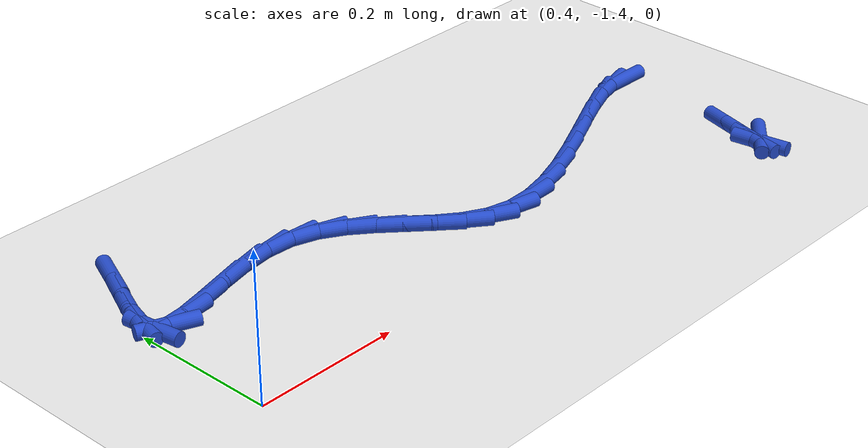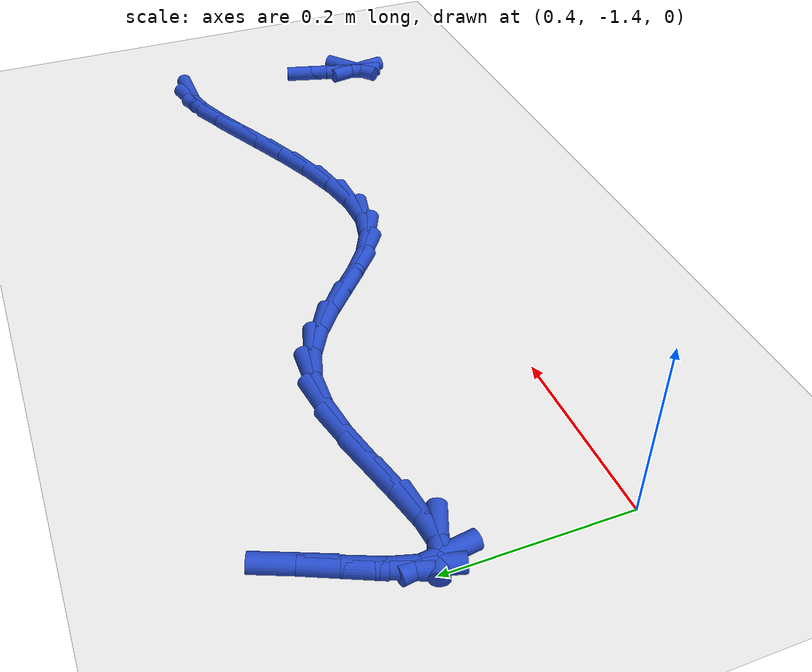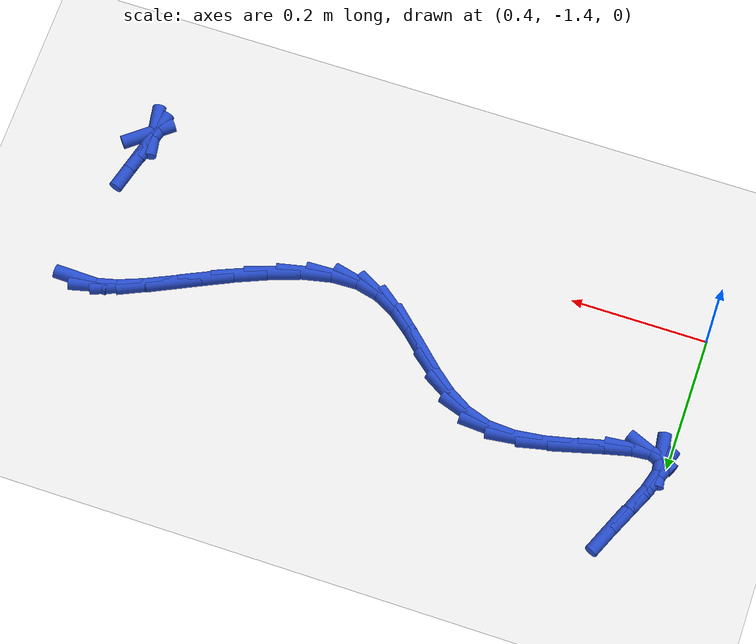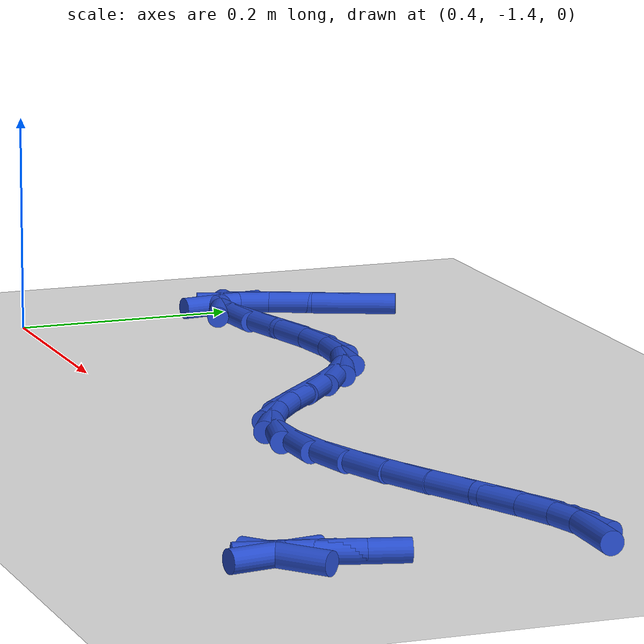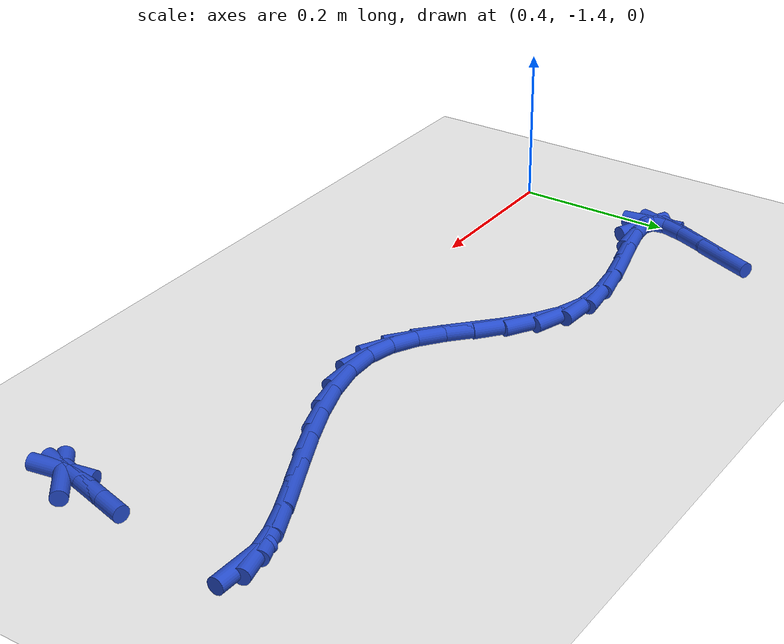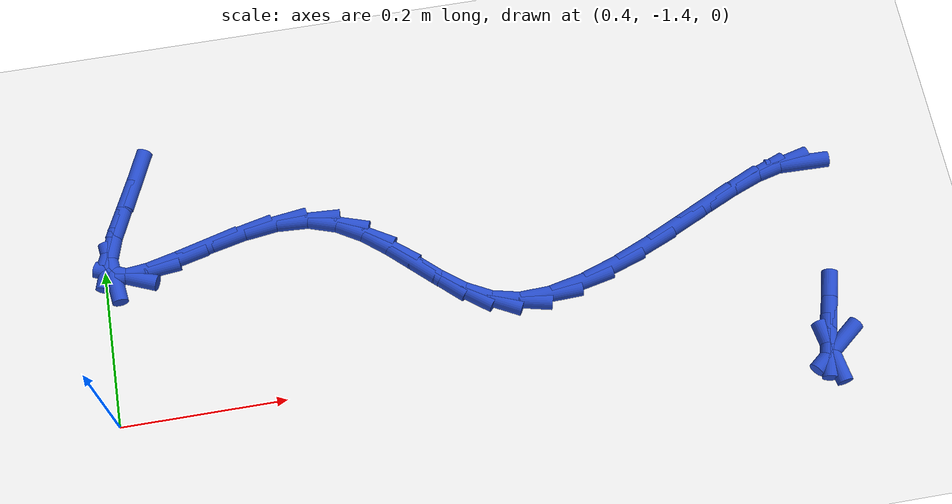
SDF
<sdf version="1.6">
 <world name="default">
  <model name="ground_plane">
   <static>1</static>
   <link name="link">
    <collision name="collision">
     <geometry><plane><normal>0 0 1</normal><size>100 100</size></plane></geometry>
     <surface><friction><ode><mu>100</mu><mu2>50</mu2></ode></friction></surface>
    </collision>
    <visual name="visual">
     <cast_shadows>0</cast_shadows>
     <geometry><plane><normal>0 0 1</normal><size>100 100</size></plane></geometry>
     <material>
      <script><uri>file://media/materials/scripts/gazebo.material</uri><name>Gazebo/WhiteGlow</name></script>
     </material>
    </visual>
   </link>
  </model>
  <model name="line">
   <link name="link_207">
    <pose>1.2606086851910296 -1.4503442014135461 0.01 0 1.57 0.6828415414742335</pose>
    <collision name="collision">
     <geometry><cylinder><radius>0.01</radius><length>0.08</length></cylinder></geometry>
    </collision>
    <visual name="visual">
     <material>
      <script><name>Gazebo/Blue</name><uri>file://media/materials/scripts/gazebo.material</uri></script>
     </material>
     <geometry><cylinder><radius>0.01</radius><length>0.08</length></cylinder></geometry>
    </visual>
   </link>
   <link name="link_208">
    <pose>1.2534373727070638 -1.4561771457020871 0.01 0 1.57 -1.408282236943456</pose>
    <collision name="collision">
     <geometry><cylinder><radius>0.01</radius><length>0.08</length></cylinder></geometry>
    </collision>
    <visual name="visual">
     <material>
      <script><name>Gazebo/Blue</name><uri>file://media/materials/scripts/gazebo.material</uri></script>
     </material>
     <geometry><cylinder><radius>0.01</radius><length>0.08</length></cylinder></geometry>
    </visual>
   </link>
   <link name="link_209">
    <pose>1.2521960085868948 -1.4486060092830366 0.01 0 1.57 1.3526039730971553</pose>
    <collision name="collision">
     <geometry><cylinder><radius>0.01</radius><length>0.08</length></cylinder></geometry>
    </collision>
    <visual name="visual">
     <material>
      <script><name>Gazebo/Blue</name><uri>file://media/materials/scripts/gazebo.material</uri></script>
     </material>
     <geometry><cylinder><radius>0.01</radius><length>0.08</length></cylinder></geometry>
    </visual>
   </link>
   <link name="link_210">
    <pose>1.257076906641807 -1.4265924300860857 0.01 0 1.57 1.3030548635360757</pose>
    <collision name="collision">
     <geometry><cylinder><radius>0.01</radius><length>0.08</length></cylinder></geometry>
    </collision>
    <visual name="visual">
     <material>
      <script><name>Gazebo/Blue</name><uri>file://media/materials/scripts/gazebo.material</uri></script>
     </material>
     <geometry><cylinder><radius>0.01</radius><length>0.08</length></cylinder></geometry>
    </visual>
   </link>
   <link name="link_211">
    <pose>1.2661992924855525 -1.3933388729762162 0.01 0 1.57 1.3058185622187886</pose>
    <collision name="collision">
     <geometry><cylinder><radius>0.01</radius><length>0.08</length></cylinder></geometry>
    </collision>
    <visual name="visual">
     <material>
      <script><name>Gazebo/Blue</name><uri>file://media/materials/scripts/gazebo.material</uri></script>
     </material>
     <geometry><cylinder><radius>0.01</radius><length>0.08</length></cylinder></geometry>
    </visual>
   </link>
   <link name="link_217">
    <pose>1.2720315332081902 -1.2046190731943922 0.01 0 1.57 -0.023640852450599194</pose>
    <collision name="collision">
     <geometry><cylinder><radius>0.01</radius><length>0.08</length></cylinder></geometry>
    </collision>
    <visual name="visual">
     <material>
      <script><name>Gazebo/Blue</name><uri>file://media/materials/scripts/gazebo.material</uri></script>
     </material>
     <geometry><cylinder><radius>0.01</radius><length>0.08</length></cylinder></geometry>
    </visual>
   </link>
   <link name="link_218">
    <pose>1.2487418254800198 -1.204068382054644 0.01 0 1.57 0.247548987180501</pose>
    <collision name="collision">
     <geometry><cylinder><radius>0.01</radius><length>0.08</length></cylinder></geometry>
    </collision>
    <visual name="visual">
     <material>
      <script><name>Gazebo/Blue</name><uri>file://media/materials/scripts/gazebo.material</uri></script>
     </material>
     <geometry><cylinder><radius>0.01</radius><length>0.08</length></cylinder></geometry>
    </visual>
   </link>
   <link name="link_219">
    <pose>1.219125908275545 -1.211553293700463 0.01 0 1.57 0.3719411694886728</pose>
    <collision name="collision">
     <geometry><cylinder><radius>0.01</radius><length>0.08</length></cylinder></geometry>
    </collision>
    <visual name="visual">
     <material>
      <script><name>Gazebo/Blue</name><uri>file://media/materials/scripts/gazebo.material</uri></script>
     </material>
     <geometry><cylinder><radius>0.01</radius><length>0.08</length></cylinder></geometry>
    </visual>
   </link>
   <link name="link_220">
    <pose>1.1843608550051121 -1.225115072909231 0.01 0 1.57 0.4281696402625696</pose>
    <collision name="collision">
     <geometry><cylinder><radius>0.01</radius><length>0.08</length></cylinder></geometry>
    </collision>
    <visual name="visual">
     <material>
      <script><name>Gazebo/Blue</name><uri>file://media/materials/scripts/gazebo.material</uri></script>
     </material>
     <geometry><cylinder><radius>0.01</radius><length>0.08</length></cylinder></geometry>
    </visual>
   </link>
   <link name="link_221">
    <pose>1.1456237390790656 -1.242794984458329 0.01 0 1.57 0.44563765702731895</pose>
    <collision name="collision">
     <geometry><cylinder><radius>0.01</radius><length>0.08</length></cylinder></geometry>
    </collision>
    <visual name="visual">
     <material>
      <script><name>Gazebo/Blue</name><uri>file://media/materials/scripts/gazebo.material</uri></script>
     </material>
     <geometry><cylinder><radius>0.01</radius><length>0.08</length></cylinder></geometry>
    </visual>
   </link>
   <link name="link_222">
    <pose>1.1040916339077511 -1.262634293125139 0.01 0 1.57 0.4347852150320378</pose>
    <collision name="collision">
     <geometry><cylinder><radius>0.01</radius><length>0.08</length></cylinder></geometry>
    </collision>
    <visual name="visual">
     <material>
      <script><name>Gazebo/Blue</name><uri>file://media/materials/scripts/gazebo.material</uri></script>
     </material>
     <geometry><cylinder><radius>0.01</radius><length>0.08</length></cylinder></geometry>
    </visual>
   </link>
   <link name="link_223">
    <pose>1.0609416129015143 -1.282674263687043 0.01 0 1.57 0.3971156883578763</pose>
    <collision name="collision">
     <geometry><cylinder><radius>0.01</radius><length>0.08</length></cylinder></geometry>
    </collision>
    <visual name="visual">
     <material>
      <script><name>Gazebo/Blue</name><uri>file://media/materials/scripts/gazebo.material</uri></script>
     </material>
     <geometry><cylinder><radius>0.01</radius><length>0.08</length></cylinder></geometry>
    </visual>
   </link>
   <link name="link_224">
    <pose>1.0173507494707008 -1.300956160921422 0.01 0 1.57 0.32762374588153564</pose>
    <collision name="collision">
     <geometry><cylinder><radius>0.01</radius><length>0.08</length></cylinder></geometry>
    </collision>
    <visual name="visual">
     <material>
      <script><name>Gazebo/Blue</name><uri>file://media/materials/scripts/gazebo.material</uri></script>
     </material>
     <geometry><cylinder><radius>0.01</radius><length>0.08</length></cylinder></geometry>
    </visual>
   </link>
   <link name="link_225">
    <pose>0.9744961170256556 -1.3155212496056583 0.01 0 1.57 0.2138100926408252</pose>
    <collision name="collision">
     <geometry><cylinder><radius>0.01</radius><length>0.08</length></cylinder></geometry>
    </collision>
    <visual name="visual">
     <material>
      <script><name>Gazebo/Blue</name><uri>file://media/materials/scripts/gazebo.material</uri></script>
     </material>
     <geometry><cylinder><radius>0.01</radius><length>0.08</length></cylinder></geometry>
    </visual>
   </link>
   <link name="link_226">
    <pose>0.9335547889767233 -1.3244107945171333 0.01 0 1.57 0.03315124261265599</pose>
    <collision name="collision">
     <geometry><cylinder><radius>0.01</radius><length>0.08</length></cylinder></geometry>
    </collision>
    <visual name="visual">
     <material>
      <script><name>Gazebo/Blue</name><uri>file://media/materials/scripts/gazebo.material</uri></script>
     </material>
     <geometry><cylinder><radius>0.01</radius><length>0.08</length></cylinder></geometry>
    </visual>
   </link>
   <link name="link_227">
    <pose>0.8957038387342517 -1.3256660604332282 0.01 0 1.57 -0.23238216816522997</pose>
    <collision name="collision">
     <geometry><cylinder><radius>0.01</radius><length>0.08</length></cylinder></geometry>
    </collision>
    <visual name="visual">
     <material>
      <script><name>Gazebo/Blue</name><uri>file://media/materials/scripts/gazebo.material</uri></script>
     </material>
     <geometry><cylinder><radius>0.01</radius><length>0.08</length></cylinder></geometry>
    </visual>
   </link>
   <link name="link_228">
    <pose>0.8619338190872414 -1.3176741308105522 0.01 0 1.57 -0.4889023244746926</pose>
    <collision name="collision">
     <geometry><cylinder><radius>0.01</radius><length>0.08</length></cylinder></geometry>
    </collision>
    <visual name="visual">
     <material>
      <script><name>Gazebo/Blue</name><uri>file://media/materials/scripts/gazebo.material</uri></script>
     </material>
     <geometry><cylinder><radius>0.01</radius><length>0.08</length></cylinder></geometry>
    </visual>
   </link>
   <link name="link_229">
    <pose>0.8317327771995217 -1.3016078106365923 0.01 0 1.57 -0.6598632066134281</pose>
    <collision name="collision">
     <geometry><cylinder><radius>0.01</radius><length>0.08</length></cylinder></geometry>
    </collision>
    <visual name="visual">
     <material>
      <script><name>Gazebo/Blue</name><uri>file://media/materials/scripts/gazebo.material</uri></script>
     </material>
     <geometry><cylinder><radius>0.01</radius><length>0.08</length></cylinder></geometry>
    </visual>
   </link>
   <link name="link_230">
    <pose>0.8038635526338296 -1.279984476522971 0.01 0 1.57 -0.7441065867966357</pose>
    <collision name="collision">
     <geometry><cylinder><radius>0.01</radius><length>0.08</length></cylinder></geometry>
    </collision>
    <visual name="visual">
     <material>
      <script><name>Gazebo/Blue</name><uri>file://media/materials/scripts/gazebo.material</uri></script>
     </material>
     <geometry><cylinder><radius>0.01</radius><length>0.08</length></cylinder></geometry>
    </visual>
   </link>
   <link name="link_231">
    <pose>0.7770842957189384 -1.2553301991585917 0.01 0 1.57 -0.7513936299879876</pose>
    <collision name="collision">
     <geometry><cylinder><radius>0.01</radius><length>0.08</length></cylinder></geometry>
    </collision>
    <visual name="visual">
     <material>
      <script><name>Gazebo/Blue</name><uri>file://media/materials/scripts/gazebo.material</uri></script>
     </material>
     <geometry><cylinder><radius>0.01</radius><length>0.08</length></cylinder></geometry>
    </visual>
   </link>
   <link name="link_232">
    <pose>0.750153156783621 -1.2301710492323592 0.01 0 1.57 -0.6849477603660306</pose>
    <collision name="collision">
     <geometry><cylinder><radius>0.01</radius><length>0.08</length></cylinder></geometry>
    </collision>
    <visual name="visual">
     <material>
      <script><name>Gazebo/Blue</name><uri>file://media/materials/scripts/gazebo.material</uri></script>
     </material>
     <geometry><cylinder><radius>0.01</radius><length>0.08</length></cylinder></geometry>
    </visual>
   </link>
   <link name="link_233">
    <pose>0.72182828615665 -1.207033097433176 0.01 0 1.57 -0.5407617022426853</pose>
    <collision name="collision">
     <geometry><cylinder><radius>0.01</radius><length>0.08</length></cylinder></geometry>
    </collision>
    <visual name="visual">
     <material>
      <script><name>Gazebo/Blue</name><uri>file://media/materials/scripts/gazebo.material</uri></script>
     </material>
     <geometry><cylinder><radius>0.01</radius><length>0.08</length></cylinder></geometry>
    </visual>
   </link>
   <link name="link_234">
    <pose>0.6908678341667971 -1.188442414449946 0.01 0 1.57 -0.3192869711396313</pose>
    <collision name="collision">
     <geometry><cylinder><radius>0.01</radius><length>0.08</length></cylinder></geometry>
    </collision>
    <visual name="visual">
     <material>
      <script><name>Gazebo/Blue</name><uri>file://media/materials/scripts/gazebo.material</uri></script>
     </material>
     <geometry><cylinder><radius>0.01</radius><length>0.08</length></cylinder></geometry>
    </visual>
   </link>
   <link name="link_235">
    <pose>0.6560299511428376 -1.1769250709715742 0.01 0 1.57 -0.057573981300209</pose>
    <collision name="collision">
     <geometry><cylinder><radius>0.01</radius><length>0.08</length></cylinder></geometry>
    </collision>
    <visual name="visual">
     <material>
      <script><name>Gazebo/Blue</name><uri>file://media/materials/scripts/gazebo.material</uri></script>
     </material>
     <geometry><cylinder><radius>0.01</radius><length>0.08</length></cylinder></geometry>
    </visual>
   </link>
   <link name="link_236">
    <pose>0.6163336522529356 -1.174637068380404 0.01 0 1.57 0.12796704433725106</pose>
    <collision name="collision">
     <geometry><cylinder><radius>0.01</radius><length>0.08</length></cylinder></geometry>
    </collision>
    <visual name="visual">
     <material>
      <script><name>Gazebo/Blue</name><uri>file://media/materials/scripts/gazebo.material</uri></script>
     </material>
     <geometry><cylinder><radius>0.01</radius><length>0.08</length></cylinder></geometry>
    </visual>
   </link>
   <link name="link_237">
    <pose>0.5733083154401227 -1.180173145400802 0.01 0 1.57 0.22560706588153828</pose>
    <collision name="collision">
     <geometry><cylinder><radius>0.01</radius><length>0.08</length></cylinder></geometry>
    </collision>
    <visual name="visual">
     <material>
      <script><name>Gazebo/Blue</name><uri>file://media/materials/scripts/gazebo.material</uri></script>
     </material>
     <geometry><cylinder><radius>0.01</radius><length>0.08</length></cylinder></geometry>
    </visual>
   </link>
   <link name="link_238">
    <pose>0.5298851367453076 -1.1901393869676424 0.01 0 1.57 0.26245023833495745</pose>
    <collision name="collision">
     <geometry><cylinder><radius>0.01</radius><length>0.08</length></cylinder></geometry>
    </collision>
    <visual name="visual">
     <material>
      <script><name>Gazebo/Blue</name><uri>file://media/materials/scripts/gazebo.material</uri></script>
     </material>
     <geometry><cylinder><radius>0.01</radius><length>0.08</length></cylinder></geometry>
    </visual>
   </link>
   <link name="link_239">
    <pose>0.48901058789745366 -1.2011202075472942 0.01 0 1.57 0.23791543637550014</pose>
    <collision name="collision">
     <geometry><cylinder><radius>0.01</radius><length>0.08</length></cylinder></geometry>
    </collision>
    <visual name="visual">
     <material>
      <script><name>Gazebo/Blue</name><uri>file://media/materials/scripts/gazebo.material</uri></script>
     </material>
     <geometry><cylinder><radius>0.01</radius><length>0.08</length></cylinder></geometry>
    </visual>
   </link>
   <link name="link_240">
    <pose>0.45363114062552495 -1.2097000216061256 0.01 0 1.57 0.10222005825684298</pose>
    <collision name="collision">
     <geometry><cylinder><radius>0.01</radius><length>0.08</length></cylinder></geometry>
    </collision>
    <visual name="visual">
     <material>
      <script><name>Gazebo/Blue</name><uri>file://media/materials/scripts/gazebo.material</uri></script>
     </material>
     <geometry><cylinder><radius>0.01</radius><length>0.08</length></cylinder></geometry>
    </visual>
   </link>
   <link name="link_241">
    <pose>0.4266932666584851 -1.2124632436105052 0.01 0 1.57 -0.3942285943442883</pose>
    <collision name="collision">
     <geometry><cylinder><radius>0.01</radius><length>0.08</length></cylinder></geometry>
    </collision>
    <visual name="visual">
     <material>
      <script><name>Gazebo/Blue</name><uri>file://media/materials/scripts/gazebo.material</uri></script>
     </material>
     <geometry><cylinder><radius>0.01</radius><length>0.08</length></cylinder></geometry>
    </visual>
   </link>
   <link name="link_242">
    <pose>0.4111433449901644 -1.205994373018222 0.01 0 1.57 -1.4350504125152879</pose>
    <collision name="collision">
     <geometry><cylinder><radius>0.01</radius><length>0.08</length></cylinder></geometry>
    </collision>
    <visual name="visual">
     <material>
      <script><name>Gazebo/Blue</name><uri>file://media/materials/scripts/gazebo.material</uri></script>
     </material>
     <geometry><cylinder><radius>0.01</radius><length>0.08</length></cylinder></geometry>
    </visual>
   </link>
   <link name="link_243">
    <pose>0.4086875544412257 -1.1880145483362696 0.01 0 1.57 1.2905875285577006</pose>
    <collision name="collision">
     <geometry><cylinder><radius>0.01</radius><length>0.08</length></cylinder></geometry>
    </collision>
    <visual name="visual">
     <material>
      <script><name>Gazebo/Blue</name><uri>file://media/materials/scripts/gazebo.material</uri></script>
     </material>
     <geometry><cylinder><radius>0.01</radius><length>0.08</length></cylinder></geometry>
    </visual>
   </link>
   <link name="link_244">
    <pose>0.4166832272578747 -1.1602306104949025 0.01 0 1.57 1.1695707263547943</pose>
    <collision name="collision">
     <geometry><cylinder><radius>0.01</radius><length>0.08</length></cylinder></geometry>
    </collision>
    <visual name="visual">
     <material>
      <script><name>Gazebo/Blue</name><uri>file://media/materials/scripts/gazebo.material</uri></script>
     </material>
     <geometry><cylinder><radius>0.01</radius><length>0.08</length></cylinder></geometry>
    </visual>
   </link>
   <link name="link_245">
    <pose>0.43153500442820264 -1.1252225385751662 0.01 0 1.57 1.1423147552052335</pose>
    <collision name="collision">
     <geometry><cylinder><radius>0.01</radius><length>0.08</length></cylinder></geometry>
    </collision>
    <visual name="visual">
     <material>
      <script><name>Gazebo/Blue</name><uri>file://media/materials/scripts/gazebo.material</uri></script>
     </material>
     <geometry><cylinder><radius>0.01</radius><length>0.08</length></cylinder></geometry>
    </visual>
   </link>
   <link name="link_246">
    <pose>0.4496475269403002 -1.0855703116581048 0.01 0 1.57 1.167942613752633</pose>
    <collision name="collision">
     <geometry><cylinder><radius>0.01</radius><length>0.08</length></cylinder></geometry>
    </collision>
    <visual name="visual">
     <material>
      <script><name>Gazebo/Blue</name><uri>file://media/materials/scripts/gazebo.material</uri></script>
     </material>
     <geometry><cylinder><radius>0.01</radius><length>0.08</length></cylinder></geometry>
    </visual>
   </link>
  </model>
 </world>
</sdf>
